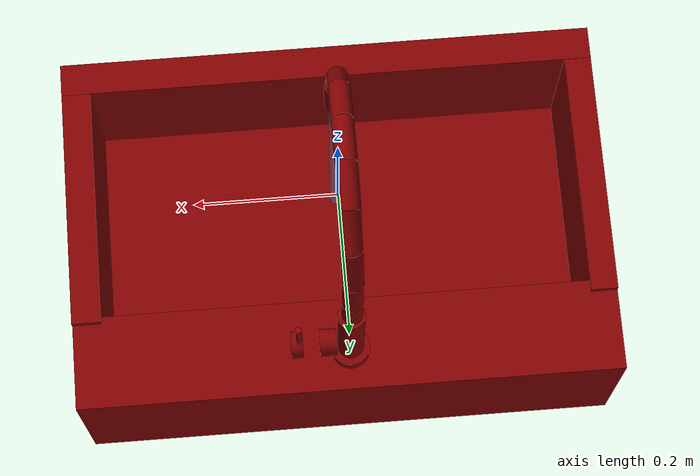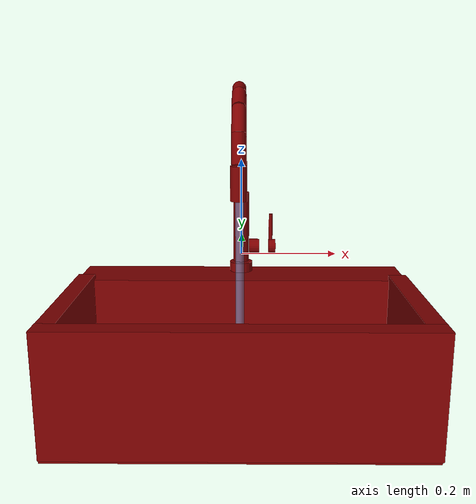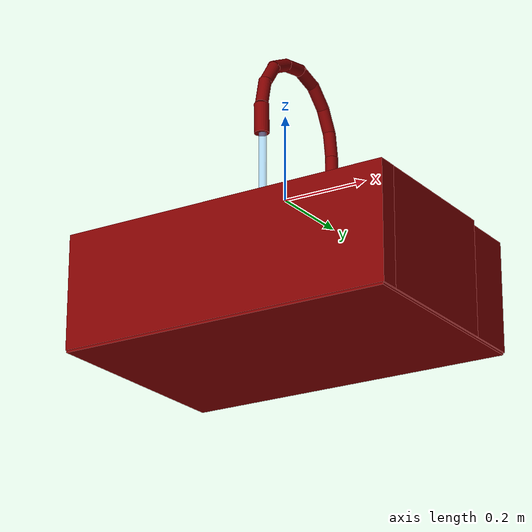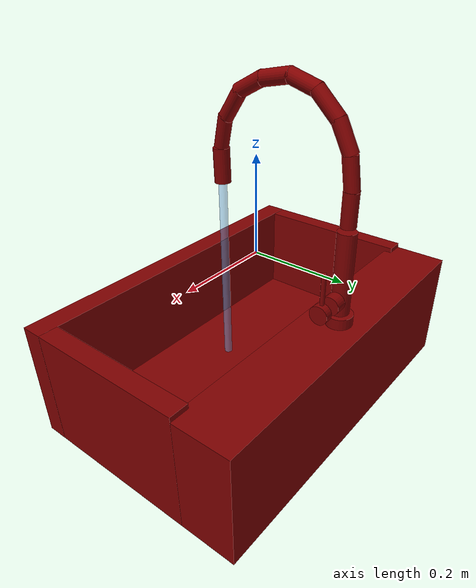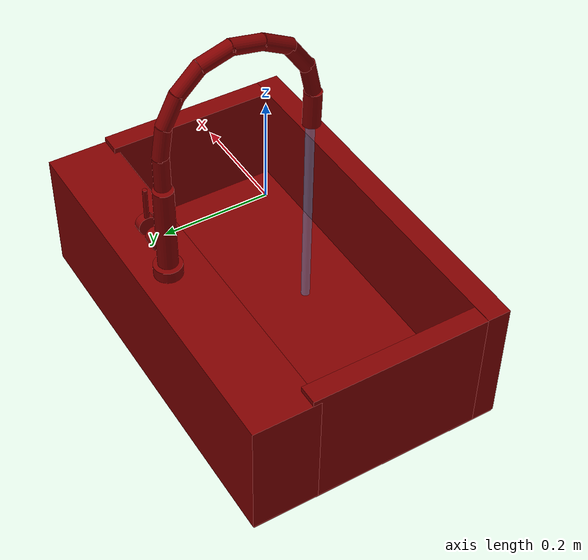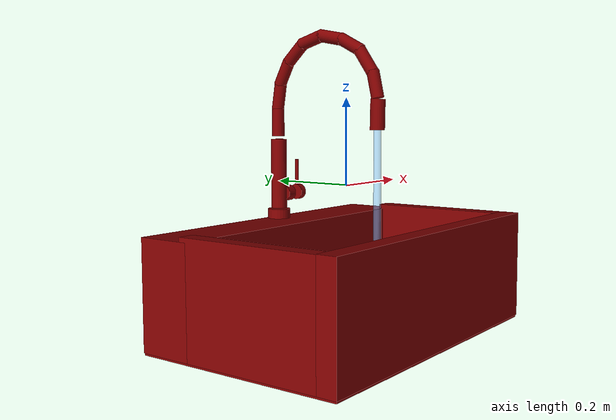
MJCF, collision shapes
<?xml version='1.0' encoding='UTF-8'?>
<mujoco model="model">
  <option timestep="0.002" gravity="0.0 0.0 -9.81"/>
  <compiler angle="radian"/>
  <asset>
    <mesh file="visuals/handle.obj" name="handle_vis"/>
    <mesh file="visuals/Body001.obj" name="Body001_vis"/>
    <mesh file="visuals/spout.obj" name="spout_vis"/>
    <texture file="visuals/T_BC001.png" name="Body001_material" type="2d"/>
    <material name="Body001_material" rgba="1 1 1 1.0" texture="Body001_material" shininess="0.1" specular="0.9"/>
    <texture file="visuals/T_BC001.png" name="handle_material" type="2d"/>
    <material name="handle_material" rgba="1 1 1 1.0" texture="handle_material" shininess="0.1" specular="0.9"/>
    <texture file="visuals/T_BC001.png" name="spout_material" type="2d"/>
    <material name="spout_material" rgba="1 1 1 1.0" texture="spout_material" shininess="0.1" specular="0.9"/>
  </asset>
  <default>
    <default class="visual">
      <geom conaffinity="0" contype="0" group="1" type="mesh"/>
    </default>
    <default class="collision">
      <geom group="0" rgba="0.5 0 0 0.5" solimp="0.998 0.998 0.001" solref="0.001 2"/>
    </default>
    <default class="spawn">
      <geom group="0" rgba="1 1 1 0.5" contype="0" conaffinity="0"/>
      <site group="0" rgba="1 1 1 0.5"/>
    </default>
    <default class="region">
      <geom group="1" conaffinity="0" contype="0" rgba="0 1 0 0"/>
    </default>
  </default>
  <worldbody>
    <body>
      <body name="object">
        <geom mesh="Body001_vis" type="mesh" solimp="0.998 0.998 0.001" solref="0.001 1" friction="0.95 0.3 0.1" class="visual" material="Body001_material"/>
        <geom class="collision" type="box" pos="0.3659437298774719 -0.03720489889383316 -0.2152286320924759" size="0.020667994394898415 0.17171137034893036 0.13056640326976776" quat="1.0 0.0 0.0 0.0"/>
        <geom class="collision" type="box" pos="-7.401220500469208e-06 -0.23192250728607178 -0.21515221893787384" size="0.3867374658584595 0.02325328253209591 0.1306402087211609" quat="1.0 0.0 0.0 0.0"/>
        <geom class="collision" type="box" pos="-0.0001415652222931385 0.18975692987442017 -0.22068609297275543" size="0.38660332560539246 0.0654187947511673 0.12510523200035095" quat="1.0 0.0 0.0 0.0"/>
        <geom class="collision" type="box" pos="-0.0008680429309606552 -0.00023792160209268332 -0.32024410367012024" size="0.3845274746417999 0.2533864378929138 0.030398419126868248" quat="1.0 0.0 0.0 0.0"/>
        <geom class="collision" type="cylinder" pos="-0.0020324583165347576 0.20041361451148987 -0.07855933159589767" size="0.027052659541368484 0.01135980524122715" quat="7.549790126404332e-08 1.0 0.0 0.0"/>
        <geom class="collision" type="cylinder" pos="-0.0020324583165347576 0.2000289261341095 0.018618857488036156" size="0.018673621118068695 0.08345291018486023" quat="7.549790126404332e-08 1.0 0.0 0.0"/>
        <geom class="collision" type="cylinder" pos="0.029449384659528732 0.20142251253128052 -0.031200909987092018" size="0.018711162731051445 0.011754904873669147" quat="1.3767879636361613e-07 0.70710688829422 -1.3767875373105198e-07 0.7071066498756409"/>
        <geom class="collision" type="box" pos="-0.36740797758102417 -0.034204866737127304 -0.21550484001636505" size="0.01933678425848484 0.175296351313591 0.13028931617736816" quat="1.0 0.0 0.0 0.0"/>
        <body name="handle">
          <joint axis="1.0 0.0 0.0" pos="0.061209846287965775 0.20164522528648376 -0.031078986823558807" limited="true" name="handle_temp_joint" type="hinge" range="-0.7853981633974483 0.7853981633974483" damping="0.5" frictionloss="1" armature="2"/>
          <joint axis="0.0 1.0 0.0" pos="0.061209846287965775 0.20164522528648376 -0.031078986823558807" limited="true" name="handle_joint" type="hinge" range="0 0.5" damping="0.5" frictionloss="1" armature="2"/>
          <geom mesh="handle_vis" type="mesh" solimp="0.998 0.998 0.001" solref="0.001 1" friction="0.95 0.3 0.1" class="visual" material="handle_material"/>
          <geom class="collision" type="cylinder" pos="0.07241512835025787 0.20142251253128052 -0.031200909987092018" size="0.018711162731051445 0.008169170469045639" quat="1.3767879636361613e-07 0.70710688829422 -1.3767875373105198e-07 0.7071066498756409"/>
          <geom name="handle_main" class="collision" type="cylinder" pos="0.06925530731678009 0.20142251253128052 0.017891744151711464" size="0.004444473888725042 0.031614042818546295" quat="7.549792968575275e-08 1.9470718370939721e-07 -1.6292069915380125e-07 1.0"/>
        </body>
        <body name="spout">
          <joint axis="0.0 0.0 1.0" pos="-0.001766621950082481 0.20071300864219666 0.12077276408672333" limited="true" name="spout_joint" range="-1.0471975511965976 1.0471975511965976" type="hinge" damping="10"/>
          <site type="cylinder" rgba="0.5 0.75 1 0.5" size="0.008671263232827187 0.21570436656475067" pos="-0.002784042481333017 -0.08707257360219955 -0.0869072824716568" name="water"/>
          <geom mesh="spout_vis" type="mesh" solimp="0.998 0.998 0.001" solref="0.001 1" friction="0.95 0.3 0.1" class="visual" material="spout_material"/>
          <geom class="collision" type="cylinder" pos="-0.0029121674597263336 0.20041361451148987 0.1425645649433136" size="0.014769676141440868 0.03290451318025589" quat="7.549790126404332e-08 1.0 0.0 0.0"/>
          <geom class="collision" type="cylinder" pos="-0.003160582622513175 0.1962512880563736 0.20318324863910675" size="0.014407367445528507 0.031245440244674683" quat="0.08006643503904343 -0.9967895150184631 4.419963493088107e-25 -1.7778314972916406e-17"/>
          <geom class="collision" type="cylinder" pos="-0.003998042084276676 0.1784127652645111 0.2602664828300476" size="0.014407367445528507 0.031245442107319832" quat="0.2368866354227066 -0.9715372920036316 -4.249221748508779e-24 -5.2599402683177265e-17"/>
          <geom class="collision" type="cylinder" pos="-0.004012579098343849 0.14290089905261993 0.30610156059265137" size="0.014407367445528507 0.031245442107319832" quat="0.396618515253067 -0.9179835319519043 -2.5472146657909133e-23 -8.806699490787487e-17"/>
          <geom class="collision" type="cylinder" pos="-0.004784042481333017 0.09500117599964142 0.33376777172088623" size="0.014407367445528507 0.031245442107319832" quat="0.5982699990272522 -0.8012945652008057 -1.7633333661480186e-23 -1.3284262557250508e-16"/>
          <geom class="collision" type="cylinder" pos="-0.004784042481333017 0.04008166491985321 0.3370712399482727" size="0.014407367445528507 0.031245442107319832" quat="0.7701568007469177 -0.6378546357154846 -4.144347029894624e-23 -1.710091625521754e-16"/>
          <geom class="collision" type="cylinder" pos="-0.004784042481333017 -0.01607663184404373 0.3184894323348999" size="0.014407367445528507 0.031245442107319832" quat="0.8541174530982971 -0.5200801491737366 -1.0566246722549945e-23 -1.8965213272811594e-16"/>
          <geom class="collision" type="cylinder" pos="-0.004784042481333017 -0.057369496673345566 0.28049999475479126" size="0.014407367445528507 0.031245442107319832" quat="0.9544209837913513 -0.29846376180648804 -2.687483443297891e-23 -2.1192403027811031e-16"/>
          <geom class="collision" type="cylinder" pos="-0.004784042481333017 -0.08214521408081055 0.22847096621990204" size="0.014407367445528507 0.031245442107319832" quat="0.9939773082733154 -0.10958591848611832 -5.831072378042639e-23 -2.2070735165955358e-16"/>
          <geom class="collision" type="cylinder" pos="-0.004784042481333017 -0.08873169124126434 0.16193772852420807" size="0.016685059294104576 0.034328892827034" quat="0.999932587146759 0.011608736589550972 -5.216486624003053e-23 -2.2203111857232424e-16" name="spout_main"/>
        </body>
        <geom class="region" name="reg_basin" type="box" pos="0.00014956295490264893 -0.044332943856716156 -0.18819940835237503" size="0.3260722438097 0.15081403201818466 0.09863660281896591"/>
        <geom class="region" name="reg_main" type="box" pos="0.0 0.0 -0.21757721900939941" size="0.3877448568344116 0.25617570972442627 0.13406522369384766"/>
      </body>
    </body>
  </worldbody>
  <actuator>
    <motor name="handle_joint_actuator" joint="handle_joint" gear="10"/>
    <motor name="handle_temp_joint_actuator" joint="handle_temp_joint" gear="10"/>
    <motor name="spout_joint_actuator" joint="spout_joint" gear="10"/>
  </actuator>
</mujoco>
